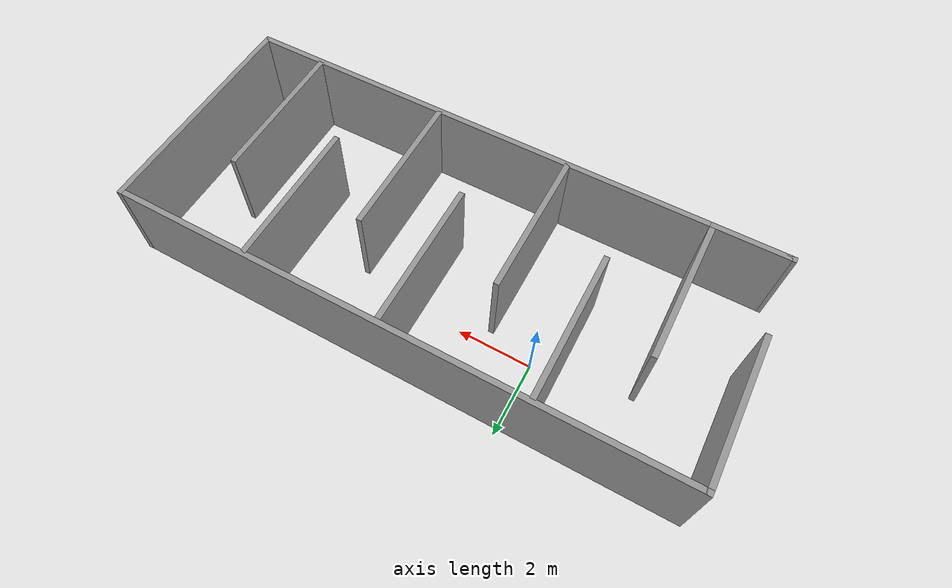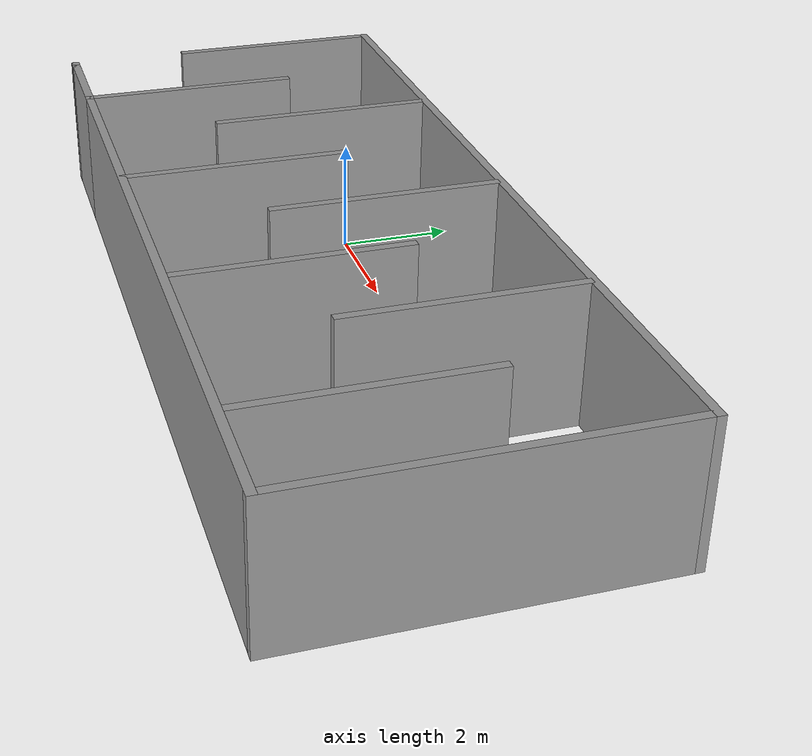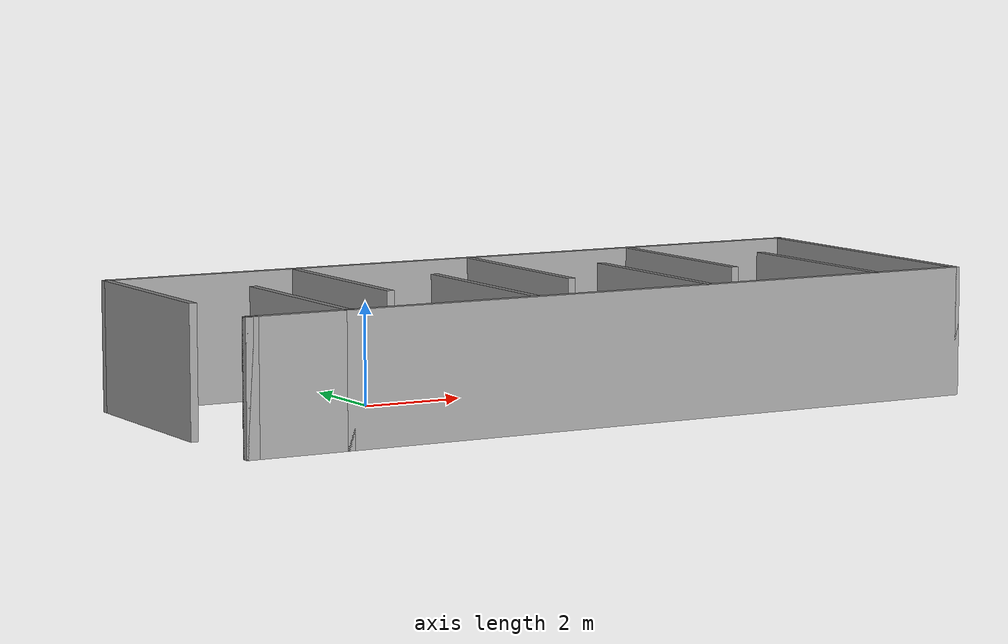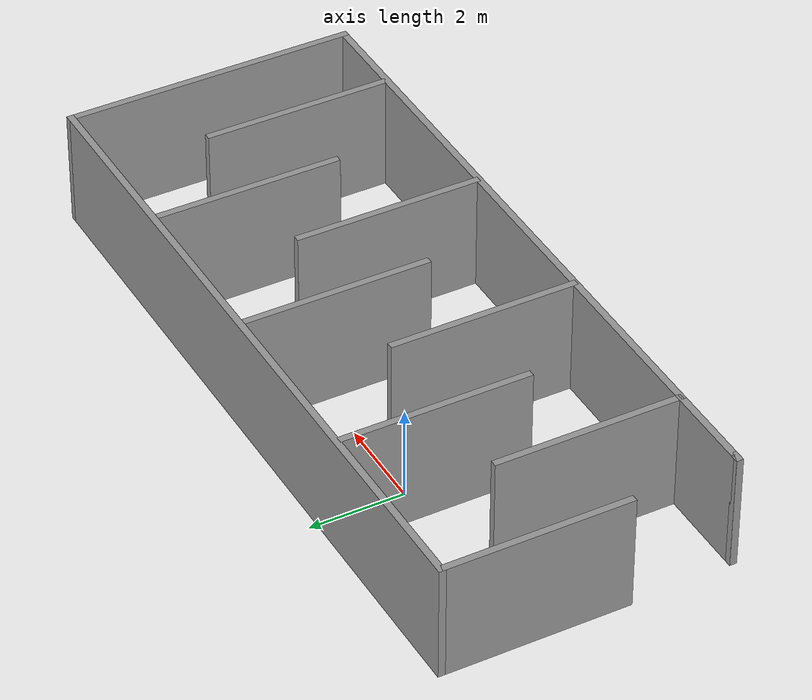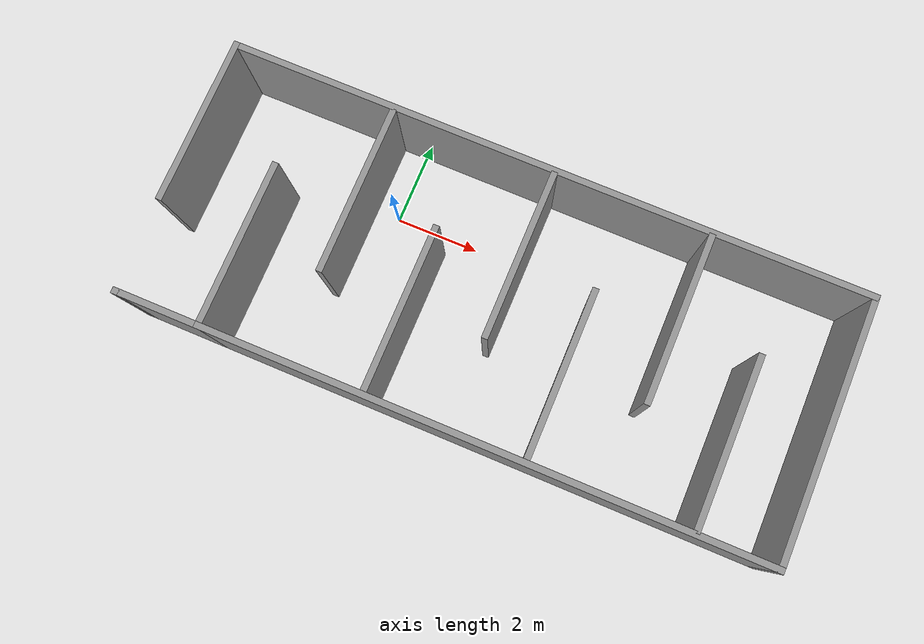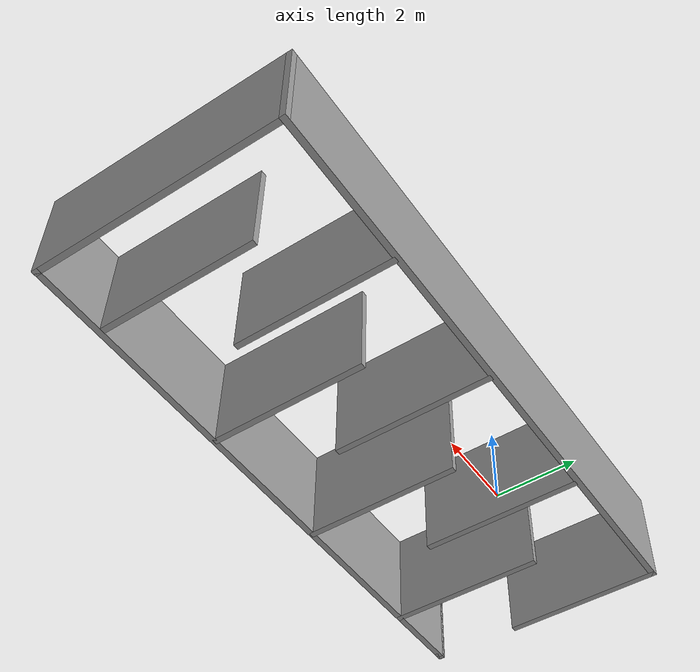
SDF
<?xml version='1.0'?>
<sdf version='1.7'>
  <model name='mapa3'>
    <pose>3.02 -1.29 0 0 -0 0</pose>
    <link name='Wall_10'>
      <collision name='Wall_10_Collision'>
        <geometry>
          <box>
            <size>0.15 0.15 2.5</size>
          </box>
        </geometry>
        <pose>0 0 1.25 0 -0 0</pose>
      </collision>
      <visual name='Wall_10_Visual'>
        <pose>0 0 1.25 0 -0 0</pose>
        <geometry>
          <box>
            <size>0.15 0.15 2.5</size>
          </box>
        </geometry>
        <material>
          <script>
            <uri>file://media/materials/scripts/gazebo.material</uri>
            <name>Gazebo/Grey</name>
          </script>
          <ambient>1 1 1 1</ambient>
        </material>
        <meta>
          <layer>0</layer>
        </meta>
      </visual>
      <pose>-7.5 -3.05 0 0 -0 0</pose>
    </link>
    <link name='Wall_14'>
      <collision name='Wall_14_Collision'>
        <geometry>
          <box>
            <size>4 0.15 2.5</size>
          </box>
        </geometry>
        <pose>0 0 1.25 0 -0 0</pose>
      </collision>
      <visual name='Wall_14_Visual'>
        <pose>0 0 1.25 0 -0 0</pose>
        <geometry>
          <box>
            <size>4 0.15 2.5</size>
          </box>
        </geometry>
        <material>
          <script>
            <uri>file://media/materials/scripts/gazebo.material</uri>
            <name>Gazebo/Grey</name>
          </script>
          <ambient>1 1 1 1</ambient>
        </material>
        <meta>
          <layer>0</layer>
        </meta>
      </visual>
      <pose>-5.55 -1.125 0 0 -0 1.5708</pose>
    </link>
    <link name='Wall_16'>
      <collision name='Wall_16_Collision'>
        <geometry>
          <box>
            <size>4 0.15 2.5</size>
          </box>
        </geometry>
        <pose>0 0 1.25 0 -0 0</pose>
      </collision>
      <visual name='Wall_16_Visual'>
        <pose>0 0 1.25 0 -0 0</pose>
        <geometry>
          <box>
            <size>4 0.15 2.5</size>
          </box>
        </geometry>
        <material>
          <script>
            <uri>file://media/materials/scripts/gazebo.material</uri>
            <name>Gazebo/Grey</name>
          </script>
          <ambient>1 1 1 1</ambient>
        </material>
        <meta>
          <layer>0</layer>
        </meta>
      </visual>
      <pose>-3.66511 1.00005 0 0 -0 -1.5708</pose>
    </link>
    <link name='Wall_18'>
      <collision name='Wall_18_Collision'>
        <geometry>
          <box>
            <size>4 0.15 2.5</size>
          </box>
        </geometry>
        <pose>0 0 1.25 0 -0 0</pose>
      </collision>
      <visual name='Wall_18_Visual'>
        <pose>0 0 1.25 0 -0 0</pose>
        <geometry>
          <box>
            <size>4 0.15 2.5</size>
          </box>
        </geometry>
        <material>
          <script>
            <uri>file://media/materials/scripts/gazebo.material</uri>
            <name>Gazebo/Grey</name>
          </script>
          <ambient>1 1 1 1</ambient>
        </material>
        <meta>
          <layer>0</layer>
        </meta>
      </visual>
      <pose>-1.73421 -1.08346 0 0 -0 1.5708</pose>
    </link>
    <link name='Wall_21'>
      <collision name='Wall_21_Collision'>
        <geometry>
          <box>
            <size>4 0.15 2.5</size>
          </box>
        </geometry>
        <pose>0 0 1.25 0 -0 0</pose>
      </collision>
      <visual name='Wall_21_Visual'>
        <pose>0 0 1.25 0 -0 0</pose>
        <geometry>
          <box>
            <size>4 0.15 2.5</size>
          </box>
        </geometry>
        <material>
          <script>
            <uri>file://media/materials/scripts/gazebo.material</uri>
            <name>Gazebo/Grey</name>
          </script>
          <ambient>1 1 1 1</ambient>
        </material>
        <meta>
          <layer>0</layer>
        </meta>
      </visual>
      <pose>0.17658 1.02016 0 0 -0 -1.5708</pose>
    </link>
    <link name='Wall_23'>
      <collision name='Wall_23_Collision'>
        <geometry>
          <box>
            <size>4 0.15 2.5</size>
          </box>
        </geometry>
        <pose>0 0 1.25 0 -0 0</pose>
      </collision>
      <visual name='Wall_23_Visual'>
        <pose>0 0 1.25 0 -0 0</pose>
        <geometry>
          <box>
            <size>4 0.15 2.5</size>
          </box>
        </geometry>
        <material>
          <script>
            <uri>file://media/materials/scripts/gazebo.material</uri>
            <name>Gazebo/Grey</name>
          </script>
          <ambient>1 1 1 1</ambient>
        </material>
        <meta>
          <layer>0</layer>
        </meta>
      </visual>
      <pose>1.96228 -1.05377 0 0 -0 1.5708</pose>
    </link>
    <link name='Wall_26'>
      <collision name='Wall_26_Collision'>
        <geometry>
          <box>
            <size>4 0.15 2.5</size>
          </box>
        </geometry>
        <pose>0 0 1.25 0 -0 0</pose>
      </collision>
      <visual name='Wall_26_Visual'>
        <pose>0 0 1.25 0 -0 0</pose>
        <geometry>
          <box>
            <size>4 0.15 2.5</size>
          </box>
        </geometry>
        <material>
          <script>
            <uri>file://media/materials/scripts/gazebo.material</uri>
            <name>Gazebo/Grey</name>
          </script>
          <ambient>1 1 1 1</ambient>
        </material>
        <meta>
          <layer>0</layer>
        </meta>
      </visual>
      <pose>3.8509 1.02807 0 0 -0 -1.5708</pose>
    </link>
    <link name='Wall_28'>
      <collision name='Wall_28_Collision'>
        <geometry>
          <box>
            <size>4 0.15 2.5</size>
          </box>
        </geometry>
        <pose>0 0 1.25 0 -0 0</pose>
      </collision>
      <visual name='Wall_28_Visual'>
        <pose>0 0 1.25 0 -0 0</pose>
        <geometry>
          <box>
            <size>4 0.15 2.5</size>
          </box>
        </geometry>
        <material>
          <script>
            <uri>file://media/materials/scripts/gazebo.material</uri>
            <name>Gazebo/Grey</name>
          </script>
          <ambient>1 1 1 1</ambient>
        </material>
        <meta>
          <layer>0</layer>
        </meta>
      </visual>
      <pose>5.71291 -1.02717 0 0 -0 1.5708</pose>
    </link>
    <link name='Wall_30'>
      <collision name='Wall_30_Collision'>
        <geometry>
          <box>
            <size>13.25 0.15 2.5</size>
          </box>
        </geometry>
        <pose>0 0 1.25 0 -0 0</pose>
      </collision>
      <visual name='Wall_30_Visual'>
        <pose>0 0 1.25 0 -0 0</pose>
        <geometry>
          <box>
            <size>13.25 0.15 2.5</size>
          </box>
        </geometry>
        <material>
          <script>
            <uri>file://media/materials/scripts/gazebo.material</uri>
            <name>Gazebo/Grey</name>
          </script>
          <ambient>1 1 1 1</ambient>
        </material>
        <meta>
          <layer>0</layer>
        </meta>
      </visual>
      <pose>1 -3.05 0 0 -0 0</pose>
    </link>
    <link name='Wall_32'>
      <collision name='Wall_32_Collision'>
        <geometry>
          <box>
            <size>6.25 0.15 2.5</size>
          </box>
        </geometry>
        <pose>0 0 1.25 0 -0 0</pose>
      </collision>
      <visual name='Wall_32_Visual'>
        <pose>0 0 1.25 0 -0 0</pose>
        <geometry>
          <box>
            <size>6.25 0.15 2.5</size>
          </box>
        </geometry>
        <material>
          <script>
            <uri>file://media/materials/scripts/gazebo.material</uri>
            <name>Gazebo/Grey</name>
          </script>
          <ambient>1 1 1 1</ambient>
        </material>
        <meta>
          <layer>0</layer>
        </meta>
      </visual>
      <pose>7.55 0 0 0 -0 1.5708</pose>
    </link>
    <link name='Wall_33'>
      <collision name='Wall_33_Collision'>
        <geometry>
          <box>
            <size>15.25 0.15 2.5</size>
          </box>
        </geometry>
        <pose>0 0 1.25 0 -0 0</pose>
      </collision>
      <visual name='Wall_33_Visual'>
        <pose>0 0 1.25 0 -0 0</pose>
        <geometry>
          <box>
            <size>15.25 0.15 2.5</size>
          </box>
        </geometry>
        <material>
          <script>
            <uri>file://media/materials/scripts/gazebo.material</uri>
            <name>Gazebo/Grey</name>
          </script>
          <ambient>1 1 1 1</ambient>
        </material>
        <meta>
          <layer>0</layer>
        </meta>
      </visual>
      <pose>0 3.05 0 0 -0 3.14159</pose>
    </link>
    <link name='Wall_34'>
      <collision name='Wall_34_Collision'>
        <geometry>
          <box>
            <size>4 0.15 2.5</size>
          </box>
        </geometry>
        <pose>0 0 1.25 0 -0 0</pose>
      </collision>
      <visual name='Wall_34_Visual'>
        <pose>0 0 1.25 0 -0 0</pose>
        <geometry>
          <box>
            <size>4 0.15 2.5</size>
          </box>
        </geometry>
        <material>
          <script>
            <uri>file://media/materials/scripts/gazebo.material</uri>
            <name>Gazebo/Grey</name>
          </script>
          <ambient>1 1 1 1</ambient>
        </material>
        <meta>
          <layer>0</layer>
        </meta>
      </visual>
      <pose>-7.55 1.125 0 0 -0 -1.5708</pose>
    </link>
    <link name='Wall_7'>
      <collision name='Wall_7_Collision'>
        <geometry>
          <box>
            <size>2 0.15 2.5</size>
          </box>
        </geometry>
        <pose>0 0 1.25 0 -0 0</pose>
      </collision>
      <visual name='Wall_7_Visual'>
        <pose>0 0 1.25 0 -0 0</pose>
        <geometry>
          <box>
            <size>2 0.15 2.5</size>
          </box>
        </geometry>
        <material>
          <script>
            <uri>file://media/materials/scripts/gazebo.material</uri>
            <name>Gazebo/Grey</name>
          </script>
          <ambient>1 1 1 1</ambient>
        </material>
        <meta>
          <layer>0</layer>
        </meta>
      </visual>
      <pose>-6.475 -3.05 0 0 -0 3.14159</pose>
    </link>
    <link name='Wall_9'>
      <collision name='Wall_9_Collision'>
        <geometry>
          <box>
            <size>0.25 0.15 2.5</size>
          </box>
        </geometry>
        <pose>0 0 1.25 0 -0 0</pose>
      </collision>
      <visual name='Wall_9_Visual'>
        <pose>0 0 1.25 0 -0 0</pose>
        <geometry>
          <box>
            <size>0.25 0.15 2.5</size>
          </box>
        </geometry>
        <material>
          <script>
            <uri>file://media/materials/scripts/gazebo.material</uri>
            <name>Gazebo/Grey</name>
          </script>
          <ambient>1 1 1 1</ambient>
        </material>
        <meta>
          <layer>0</layer>
        </meta>
      </visual>
      <pose>-7.45 -3.05 0 0 -0 3.14159</pose>
    </link>
    <static>1</static>
  </model>
</sdf>
